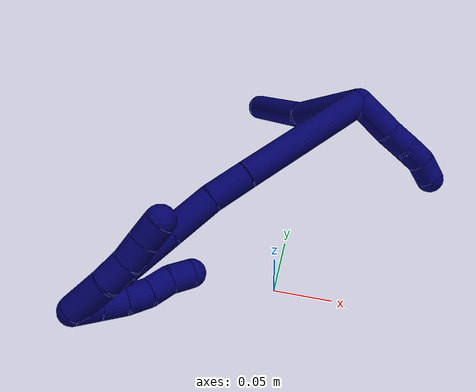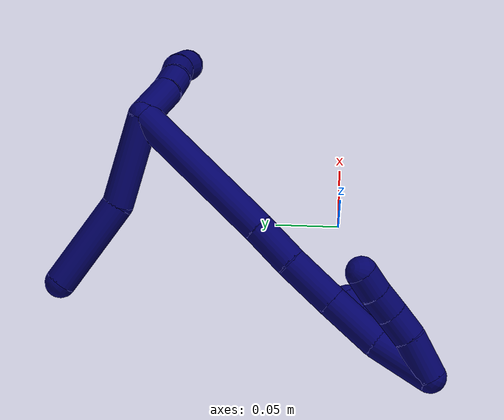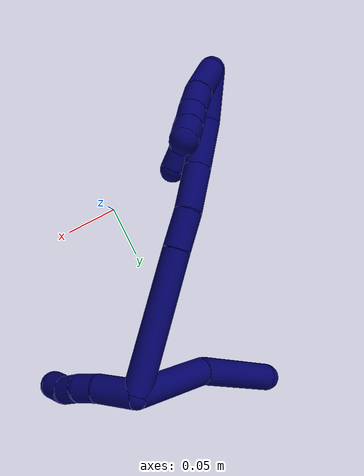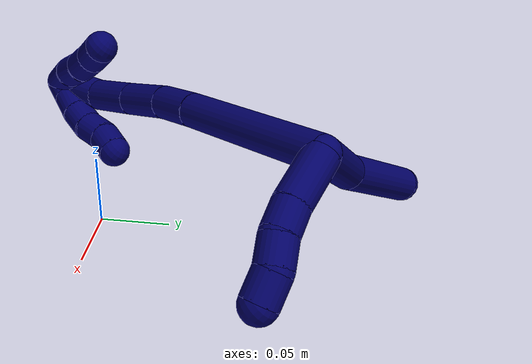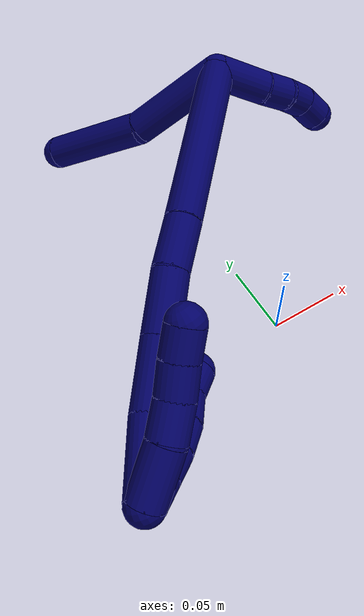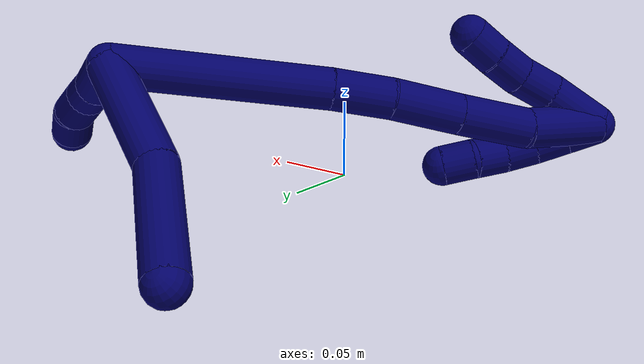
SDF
<sdf version="1.7">
 <world name="default">
  <model name="7">
   <static>0</static>
   <link name="7">
    <collision name="collision-cylinder-e_1_2_8">
     <pose>0.034683 -0.008422 0.007721 0.828784 1.25256 0.616158</pose>
     <geometry><cylinder><radius>0.0125</radius><length>0.073032</length></cylinder></geometry>
     <surface>
      <friction><ode><mu>1.16</mu><mu2>1.16</mu2><slip1>0</slip1><slip2>0</slip2></ode></friction>
      <contact><ode><kp>1e+06</kp><kd>1</kd><max_vel>0</max_vel><min_depth>0.001</min_depth></ode></contact>
     </surface>
    </collision>
    <visual name="visual-cylinder-e_1_2_8">
     <pose>0.034683 -0.008422 0.007721 0.828784 1.25256 0.616158</pose>
     <geometry><cylinder><radius>0.0125</radius><length>0.073032</length></cylinder></geometry>
     <material><ambient>0.003922 0 0.403922 1</ambient></material>
    </visual>
    <collision name="collision-cylinder-e_2_8_6">
     <pose>0.107714 -0.018496 0.012684 2.60204 1.48715 2.55744</pose>
     <geometry><cylinder><radius>0.0125</radius><length>0.076968</length></cylinder></geometry>
     <surface>
      <friction><ode><mu>1.16</mu><mu2>1.16</mu2><slip1>0</slip1><slip2>0</slip2></ode></friction>
      <contact><ode><kp>1e+06</kp><kd>1</kd><max_vel>0</max_vel><min_depth>0.001</min_depth></ode></contact>
     </surface>
    </collision>
    <visual name="visual-cylinder-e_2_8_6">
     <pose>0.107714 -0.018496 0.012684 2.60204 1.48715 2.55744</pose>
     <geometry><cylinder><radius>0.0125</radius><length>0.076968</length></cylinder></geometry>
     <material><ambient>0.003922 0 0.403922 1</ambient></material>
    </visual>
    <collision name="collision-cylinder-e_1_2_9">
     <pose>-0.009158 0.011608 0.012654 -0.742327 -0.489928 0.193979</pose>
     <geometry><cylinder><radius>0.0125</radius><length>0.038922</length></cylinder></geometry>
     <surface>
      <friction><ode><mu>1.16</mu><mu2>1.16</mu2><slip1>0</slip1><slip2>0</slip2></ode></friction>
      <contact><ode><kp>1e+06</kp><kd>1</kd><max_vel>0</max_vel><min_depth>0.001</min_depth></ode></contact>
     </surface>
    </collision>
    <visual name="visual-cylinder-e_1_2_9">
     <pose>-0.009158 0.011608 0.012654 -0.742327 -0.489928 0.193979</pose>
     <geometry><cylinder><radius>0.0125</radius><length>0.038922</length></cylinder></geometry>
     <material><ambient>0.003922 0 0.403922 1</ambient></material>
    </visual>
    <collision name="collision-cylinder-e_2_9_10">
     <pose>-0.022471 0.030455 0.031392 -0.871775 -0.414035 0.195026</pose>
     <geometry><cylinder><radius>0.0125</radius><length>0.020657</length></cylinder></geometry>
     <surface>
      <friction><ode><mu>1.16</mu><mu2>1.16</mu2><slip1>0</slip1><slip2>0</slip2></ode></friction>
      <contact><ode><kp>1e+06</kp><kd>1</kd><max_vel>0</max_vel><min_depth>0.001</min_depth></ode></contact>
     </surface>
    </collision>
    <visual name="visual-cylinder-e_2_9_10">
     <pose>-0.022471 0.030455 0.031392 -0.871775 -0.414035 0.195026</pose>
     <geometry><cylinder><radius>0.0125</radius><length>0.020657</length></cylinder></geometry>
     <material><ambient>0.003922 0 0.403922 1</ambient></material>
    </visual>
    <collision name="collision-cylinder-e_3_10_11">
     <pose>-0.028354 0.04585 0.043152 -0.96298 -0.172187 0.09013</pose>
     <geometry><cylinder><radius>0.0125</radius><length>0.020173</length></cylinder></geometry>
     <surface>
      <friction><ode><mu>1.16</mu><mu2>1.16</mu2><slip1>0</slip1><slip2>0</slip2></ode></friction>
      <contact><ode><kp>1e+06</kp><kd>1</kd><max_vel>0</max_vel><min_depth>0.001</min_depth></ode></contact>
     </surface>
    </collision>
    <visual name="visual-cylinder-e_3_10_11">
     <pose>-0.028354 0.04585 0.043152 -0.96298 -0.172187 0.09013</pose>
     <geometry><cylinder><radius>0.0125</radius><length>0.020173</length></cylinder></geometry>
     <material><ambient>0.003922 0 0.403922 1</ambient></material>
    </visual>
    <collision name="collision-cylinder-e_4_11_5">
     <pose>-0.031464 0.059936 0.056916 -0.632416 -0.136889 0.044851</pose>
     <geometry><cylinder><radius>0.0125</radius><length>0.020248</length></cylinder></geometry>
     <surface>
      <friction><ode><mu>1.16</mu><mu2>1.16</mu2><slip1>0</slip1><slip2>0</slip2></ode></friction>
      <contact><ode><kp>1e+06</kp><kd>1</kd><max_vel>0</max_vel><min_depth>0.001</min_depth></ode></contact>
     </surface>
    </collision>
    <visual name="visual-cylinder-e_4_11_5">
     <pose>-0.031464 0.059936 0.056916 -0.632416 -0.136889 0.044851</pose>
     <geometry><cylinder><radius>0.0125</radius><length>0.020248</length></cylinder></geometry>
     <material><ambient>0.003922 0 0.403922 1</ambient></material>
    </visual>
    <collision name="collision-cylinder-e_1_2_12">
     <pose>0.006722 -0.051697 0.035196 0.973066 0.107073 0.056675</pose>
     <geometry><cylinder><radius>0.0125</radius><length>0.125801</length></cylinder></geometry>
     <surface>
      <friction><ode><mu>1.16</mu><mu2>1.16</mu2><slip1>0</slip1><slip2>0</slip2></ode></friction>
      <contact><ode><kp>1e+06</kp><kd>1</kd><max_vel>0</max_vel><min_depth>0.001</min_depth></ode></contact>
     </surface>
    </collision>
    <visual name="visual-cylinder-e_1_2_12">
     <pose>0.006722 -0.051697 0.035196 0.973066 0.107073 0.056675</pose>
     <geometry><cylinder><radius>0.0125</radius><length>0.125801</length></cylinder></geometry>
     <material><ambient>0.003922 0 0.403922 1</ambient></material>
    </visual>
    <collision name="collision-cylinder-e_2_12_13">
     <pose>0.016204 -0.117909 0.080892 0.944513 0.152819 0.078174</pose>
     <geometry><cylinder><radius>0.0125</radius><length>0.036254</length></cylinder></geometry>
     <surface>
      <friction><ode><mu>1.16</mu><mu2>1.16</mu2><slip1>0</slip1><slip2>0</slip2></ode></friction>
      <contact><ode><kp>1e+06</kp><kd>1</kd><max_vel>0</max_vel><min_depth>0.001</min_depth></ode></contact>
     </surface>
    </collision>
    <visual name="visual-cylinder-e_2_12_13">
     <pose>0.016204 -0.117909 0.080892 0.944513 0.152819 0.078174</pose>
     <geometry><cylinder><radius>0.0125</radius><length>0.036254</length></cylinder></geometry>
     <material><ambient>0.003922 0 0.403922 1</ambient></material>
    </visual>
    <collision name="collision-cylinder-e_3_13_14">
     <pose>0.021734 -0.148093 0.105573 0.835229 0.130366 0.057911</pose>
     <geometry><cylinder><radius>0.0125</radius><length>0.042626</length></cylinder></geometry>
     <surface>
      <friction><ode><mu>1.16</mu><mu2>1.16</mu2><slip1>0</slip1><slip2>0</slip2></ode></friction>
      <contact><ode><kp>1e+06</kp><kd>1</kd><max_vel>0</max_vel><min_depth>0.001</min_depth></ode></contact>
     </surface>
    </collision>
    <visual name="visual-cylinder-e_3_13_14">
     <pose>0.021734 -0.148093 0.105573 0.835229 0.130366 0.057911</pose>
     <geometry><cylinder><radius>0.0125</radius><length>0.042626</length></cylinder></geometry>
     <material><ambient>0.003922 0 0.403922 1</ambient></material>
    </visual>
    <collision name="collision-cylinder-e_4_14_15">
     <pose>0.027009 -0.180975 0.134991 0.846208 0.108536 0.048912</pose>
     <geometry><cylinder><radius>0.0125</radius><length>0.046251</length></cylinder></geometry>
     <surface>
      <friction><ode><mu>1.16</mu><mu2>1.16</mu2><slip1>0</slip1><slip2>0</slip2></ode></friction>
      <contact><ode><kp>1e+06</kp><kd>1</kd><max_vel>0</max_vel><min_depth>0.001</min_depth></ode></contact>
     </surface>
    </collision>
    <visual name="visual-cylinder-e_4_14_15">
     <pose>0.027009 -0.180975 0.134991 0.846208 0.108536 0.048912</pose>
     <geometry><cylinder><radius>0.0125</radius><length>0.046251</length></cylinder></geometry>
     <material><ambient>0.003922 0 0.403922 1</ambient></material>
    </visual>
    <collision name="collision-cylinder-e_5_15_1">
     <pose>0.027171 -0.218243 0.164167 0.963442 -0.095637 -0.050027</pose>
     <geometry><cylinder><radius>0.0125</radius><length>0.049068</length></cylinder></geometry>
     <surface>
      <friction><ode><mu>1.16</mu><mu2>1.16</mu2><slip1>0</slip1><slip2>0</slip2></ode></friction>
      <contact><ode><kp>1e+06</kp><kd>1</kd><max_vel>0</max_vel><min_depth>0.001</min_depth></ode></contact>
     </surface>
    </collision>
    <visual name="visual-cylinder-e_5_15_1">
     <pose>0.027171 -0.218243 0.164167 0.963442 -0.095637 -0.050027</pose>
     <geometry><cylinder><radius>0.0125</radius><length>0.049068</length></cylinder></geometry>
     <material><ambient>0.003922 0 0.403922 1</ambient></material>
    </visual>
    <collision name="collision-cylinder-e_1_1_16">
     <pose>0.024905 -0.228334 0.17726 -1.65533 0.007651 -0.008327</pose>
     <geometry><cylinder><radius>0.0125</radius><length>0.02</length></cylinder></geometry>
     <surface>
      <friction><ode><mu>1.16</mu><mu2>1.16</mu2><slip1>0</slip1><slip2>0</slip2></ode></friction>
      <contact><ode><kp>1e+06</kp><kd>1</kd><max_vel>0</max_vel><min_depth>0.001</min_depth></ode></contact>
     </surface>
    </collision>
    <visual name="visual-cylinder-e_1_1_16">
     <pose>0.024905 -0.228334 0.17726 -1.65533 0.007651 -0.008327</pose>
     <geometry><cylinder><radius>0.0125</radius><length>0.02</length></cylinder></geometry>
     <material><ambient>0.003922 0 0.403922 1</ambient></material>
    </visual>
    <collision name="collision-cylinder-e_2_16_17">
     <pose>0.025015 -0.208406 0.17557 -1.65545 0.003302 -0.003595</pose>
     <geometry><cylinder><radius>0.0125</radius><length>0.02</length></cylinder></geometry>
     <surface>
      <friction><ode><mu>1.16</mu><mu2>1.16</mu2><slip1>0</slip1><slip2>0</slip2></ode></friction>
      <contact><ode><kp>1e+06</kp><kd>1</kd><max_vel>0</max_vel><min_depth>0.001</min_depth></ode></contact>
     </surface>
    </collision>
    <visual name="visual-cylinder-e_2_16_17">
     <pose>0.025015 -0.208406 0.17557 -1.65545 0.003302 -0.003595</pose>
     <geometry><cylinder><radius>0.0125</radius><length>0.02</length></cylinder></geometry>
     <material><ambient>0.003922 0 0.403922 1</ambient></material>
    </visual>
    <collision name="collision-cylinder-e_3_17_18">
     <pose>0.025441 -0.188694 0.172527 -1.79252 0.039335 -0.049186</pose>
     <geometry><cylinder><radius>0.0125</radius><length>0.02</length></cylinder></geometry>
     <surface>
      <friction><ode><mu>1.16</mu><mu2>1.16</mu2><slip1>0</slip1><slip2>0</slip2></ode></friction>
      <contact><ode><kp>1e+06</kp><kd>1</kd><max_vel>0</max_vel><min_depth>0.001</min_depth></ode></contact>
     </surface>
    </collision>
    <visual name="visual-cylinder-e_3_17_18">
     <pose>0.025441 -0.188694 0.172527 -1.79252 0.039335 -0.049186</pose>
     <geometry><cylinder><radius>0.0125</radius><length>0.02</length></cylinder></geometry>
     <material><ambient>0.003922 0 0.403922 1</ambient></material>
    </visual>
    <collision name="collision-cylinder-e_4_18_19">
     <pose>0.027065 -0.17 0.166034 -2.01846 0.123382 -0.195737</pose>
     <geometry><cylinder><radius>0.0125</radius><length>0.02</length></cylinder></geometry>
     <surface>
      <friction><ode><mu>1.16</mu><mu2>1.16</mu2><slip1>0</slip1><slip2>0</slip2></ode></friction>
      <contact><ode><kp>1e+06</kp><kd>1</kd><max_vel>0</max_vel><min_depth>0.001</min_depth></ode></contact>
     </surface>
    </collision>
    <visual name="visual-cylinder-e_4_18_19">
     <pose>0.027065 -0.17 0.166034 -2.01846 0.123382 -0.195737</pose>
     <geometry><cylinder><radius>0.0125</radius><length>0.02</length></cylinder></geometry>
     <material><ambient>0.003922 0 0.403922 1</ambient></material>
    </visual>
    <collision name="collision-cylinder-e_5_19_4">
     <pose>0.028031 -0.151276 0.159659 -1.78027 -0.026443 0.032655</pose>
     <geometry><cylinder><radius>0.0125</radius><length>0.02</length></cylinder></geometry>
     <surface>
      <friction><ode><mu>1.16</mu><mu2>1.16</mu2><slip1>0</slip1><slip2>0</slip2></ode></friction>
      <contact><ode><kp>1e+06</kp><kd>1</kd><max_vel>0</max_vel><min_depth>0.001</min_depth></ode></contact>
     </surface>
    </collision>
    <visual name="visual-cylinder-e_5_19_4">
     <pose>0.028031 -0.151276 0.159659 -1.78027 -0.026443 0.032655</pose>
     <geometry><cylinder><radius>0.0125</radius><length>0.02</length></cylinder></geometry>
     <material><ambient>0.003922 0 0.403922 1</ambient></material>
    </visual>
    <collision name="collision-cylinder-e_1_1_20">
     <pose>0.016358 -0.228853 0.16566 -2.49235 -0.496851 1.29183</pose>
     <geometry><cylinder><radius>0.0125</radius><length>0.035542</length></cylinder></geometry>
     <surface>
      <friction><ode><mu>1.16</mu><mu2>1.16</mu2><slip1>0</slip1><slip2>0</slip2></ode></friction>
      <contact><ode><kp>1e+06</kp><kd>1</kd><max_vel>0</max_vel><min_depth>0.001</min_depth></ode></contact>
     </surface>
    </collision>
    <visual name="visual-cylinder-e_1_1_20">
     <pose>0.016358 -0.228853 0.16566 -2.49235 -0.496851 1.29183</pose>
     <geometry><cylinder><radius>0.0125</radius><length>0.035542</length></cylinder></geometry>
     <material><ambient>0.003922 0 0.403922 1</ambient></material>
    </visual>
    <collision name="collision-cylinder-e_2_20_21">
     <pose>0.004152 -0.212635 0.144532 -2.47926 -0.326966 0.89465</pose>
     <geometry><cylinder><radius>0.0125</radius><length>0.023258</length></cylinder></geometry>
     <surface>
      <friction><ode><mu>1.16</mu><mu2>1.16</mu2><slip1>0</slip1><slip2>0</slip2></ode></friction>
      <contact><ode><kp>1e+06</kp><kd>1</kd><max_vel>0</max_vel><min_depth>0.001</min_depth></ode></contact>
     </surface>
    </collision>
    <visual name="visual-cylinder-e_2_20_21">
     <pose>0.004152 -0.212635 0.144532 -2.47926 -0.326966 0.89465</pose>
     <geometry><cylinder><radius>0.0125</radius><length>0.023258</length></cylinder></geometry>
     <material><ambient>0.003922 0 0.403922 1</ambient></material>
    </visual>
    <collision name="collision-cylinder-e_3_21_22">
     <pose>-0.003007 -0.20109 0.127093 -2.64241 -0.330826 1.15963</pose>
     <geometry><cylinder><radius>0.0125</radius><length>0.021086</length></cylinder></geometry>
     <surface>
      <friction><ode><mu>1.16</mu><mu2>1.16</mu2><slip1>0</slip1><slip2>0</slip2></ode></friction>
      <contact><ode><kp>1e+06</kp><kd>1</kd><max_vel>0</max_vel><min_depth>0.001</min_depth></ode></contact>
     </surface>
    </collision>
    <visual name="visual-cylinder-e_3_21_22">
     <pose>-0.003007 -0.20109 0.127093 -2.64241 -0.330826 1.15963</pose>
     <geometry><cylinder><radius>0.0125</radius><length>0.021086</length></cylinder></geometry>
     <material><ambient>0.003922 0 0.403922 1</ambient></material>
    </visual>
    <collision name="collision-cylinder-e_4_22_3">
     <pose>-0.010438 -0.192039 0.110166 -2.65943 -0.409695 1.4032</pose>
     <geometry><cylinder><radius>0.0125</radius><length>0.020114</length></cylinder></geometry>
     <surface>
      <friction><ode><mu>1.16</mu><mu2>1.16</mu2><slip1>0</slip1><slip2>0</slip2></ode></friction>
      <contact><ode><kp>1e+06</kp><kd>1</kd><max_vel>0</max_vel><min_depth>0.001</min_depth></ode></contact>
     </surface>
    </collision>
    <visual name="visual-cylinder-e_4_22_3">
     <pose>-0.010438 -0.192039 0.110166 -2.65943 -0.409695 1.4032</pose>
     <geometry><cylinder><radius>0.0125</radius><length>0.020114</length></cylinder></geometry>
     <material><ambient>0.003922 0 0.403922 1</ambient></material>
    </visual>
    <collision name="collision-sphere-3">
     <pose>-0.014444 -0.187761 0.101993 0 -0 0</pose>
     <geometry><sphere><radius>0.0125</radius></sphere></geometry>
     <surface>
      <friction><ode><mu>1.16</mu><mu2>1.16</mu2><slip1>0</slip1><slip2>0</slip2></ode></friction>
      <contact><ode><kp>1e+06</kp><kd>1</kd><max_vel>0</max_vel><min_depth>0.001</min_depth></ode></contact>
     </surface>
    </collision>
    <visual name="visual-sphere-3">
     <pose>-0.014444 -0.187761 0.101993 0 -0 0</pose>
     <geometry><sphere><radius>0.0125</radius></sphere></geometry>
     <material><ambient>0.003922 0 0.403922 1</ambient></material>
    </visual>
    <collision name="collision-sphere-22">
     <pose>-0.006432 -0.196316 0.118339 0 -0 0</pose>
     <geometry><sphere><radius>0.0125</radius></sphere></geometry>
     <surface>
      <friction><ode><mu>1.16</mu><mu2>1.16</mu2><slip1>0</slip1><slip2>0</slip2></ode></friction>
      <contact><ode><kp>1e+06</kp><kd>1</kd><max_vel>0</max_vel><min_depth>0.001</min_depth></ode></contact>
     </surface>
    </collision>
    <visual name="visual-sphere-22">
     <pose>-0.006432 -0.196316 0.118339 0 -0 0</pose>
     <geometry><sphere><radius>0.0125</radius></sphere></geometry>
     <material><ambient>0.003922 0 0.403922 1</ambient></material>
    </visual>
    <collision name="collision-sphere-21">
     <pose>0.000417 -0.205863 0.135848 0 -0 0</pose>
     <geometry><sphere><radius>0.0125</radius></sphere></geometry>
     <surface>
      <friction><ode><mu>1.16</mu><mu2>1.16</mu2><slip1>0</slip1><slip2>0</slip2></ode></friction>
      <contact><ode><kp>1e+06</kp><kd>1</kd><max_vel>0</max_vel><min_depth>0.001</min_depth></ode></contact>
     </surface>
    </collision>
    <visual name="visual-sphere-21">
     <pose>0.000417 -0.205863 0.135848 0 -0 0</pose>
     <geometry><sphere><radius>0.0125</radius></sphere></geometry>
     <material><ambient>0.003922 0 0.403922 1</ambient></material>
    </visual>
    <collision name="collision-sphere-20">
     <pose>0.007887 -0.219408 0.153216 0 -0 0</pose>
     <geometry><sphere><radius>0.0125</radius></sphere></geometry>
     <surface>
      <friction><ode><mu>1.16</mu><mu2>1.16</mu2><slip1>0</slip1><slip2>0</slip2></ode></friction>
      <contact><ode><kp>1e+06</kp><kd>1</kd><max_vel>0</max_vel><min_depth>0.001</min_depth></ode></contact>
     </surface>
    </collision>
    <visual name="visual-sphere-20">
     <pose>0.007887 -0.219408 0.153216 0 -0 0</pose>
     <geometry><sphere><radius>0.0125</radius></sphere></geometry>
     <material><ambient>0.003922 0 0.403922 1</ambient></material>
    </visual>
    <collision name="collision-sphere-4">
     <pose>0.027767 -0.141498 0.157581 0 -0 0</pose>
     <geometry><sphere><radius>0.0125</radius></sphere></geometry>
     <surface>
      <friction><ode><mu>1.16</mu><mu2>1.16</mu2><slip1>0</slip1><slip2>0</slip2></ode></friction>
      <contact><ode><kp>1e+06</kp><kd>1</kd><max_vel>0</max_vel><min_depth>0.001</min_depth></ode></contact>
     </surface>
    </collision>
    <visual name="visual-sphere-4">
     <pose>0.027767 -0.141498 0.157581 0 -0 0</pose>
     <geometry><sphere><radius>0.0125</radius></sphere></geometry>
     <material><ambient>0.003922 0 0.403922 1</ambient></material>
    </visual>
    <collision name="collision-sphere-11">
     <pose>-0.030082 0.054008 0.048827 0 -0 0</pose>
     <geometry><sphere><radius>0.0125</radius></sphere></geometry>
     <surface>
      <friction><ode><mu>1.16</mu><mu2>1.16</mu2><slip1>0</slip1><slip2>0</slip2></ode></friction>
      <contact><ode><kp>1e+06</kp><kd>1</kd><max_vel>0</max_vel><min_depth>0.001</min_depth></ode></contact>
     </surface>
    </collision>
    <visual name="visual-sphere-11">
     <pose>-0.030082 0.054008 0.048827 0 -0 0</pose>
     <geometry><sphere><radius>0.0125</radius></sphere></geometry>
     <material><ambient>0.003922 0 0.403922 1</ambient></material>
    </visual>
    <collision name="collision-sphere-10">
     <pose>-0.026626 0.037693 0.037477 0 -0 0</pose>
     <geometry><sphere><radius>0.0125</radius></sphere></geometry>
     <surface>
      <friction><ode><mu>1.16</mu><mu2>1.16</mu2><slip1>0</slip1><slip2>0</slip2></ode></friction>
      <contact><ode><kp>1e+06</kp><kd>1</kd><max_vel>0</max_vel><min_depth>0.001</min_depth></ode></contact>
     </surface>
    </collision>
    <visual name="visual-sphere-10">
     <pose>-0.026626 0.037693 0.037477 0 -0 0</pose>
     <geometry><sphere><radius>0.0125</radius></sphere></geometry>
     <material><ambient>0.003922 0 0.403922 1</ambient></material>
    </visual>
    <collision name="collision-sphere-6">
     <pose>0.146064 -0.020148 0.009925 0 -0 0</pose>
     <geometry><sphere><radius>0.0125</radius></sphere></geometry>
     <surface>
      <friction><ode><mu>1.16</mu><mu2>1.16</mu2><slip1>0</slip1><slip2>0</slip2></ode></friction>
      <contact><ode><kp>1e+06</kp><kd>1</kd><max_vel>0</max_vel><min_depth>0.001</min_depth></ode></contact>
     </surface>
    </collision>
    <visual name="visual-sphere-6">
     <pose>0.146064 -0.020148 0.009925 0 -0 0</pose>
     <geometry><sphere><radius>0.0125</radius></sphere></geometry>
     <material><ambient>0.003922 0 0.403922 1</ambient></material>
    </visual>
    <collision name="collision-sphere-9">
     <pose>-0.018315 0.023216 0.025308 0 -0 0</pose>
     <geometry><sphere><radius>0.0125</radius></sphere></geometry>
     <surface>
      <friction><ode><mu>1.16</mu><mu2>1.16</mu2><slip1>0</slip1><slip2>0</slip2></ode></friction>
      <contact><ode><kp>1e+06</kp><kd>1</kd><max_vel>0</max_vel><min_depth>0.001</min_depth></ode></contact>
     </surface>
    </collision>
    <visual name="visual-sphere-9">
     <pose>-0.018315 0.023216 0.025308 0 -0 0</pose>
     <geometry><sphere><radius>0.0125</radius></sphere></geometry>
     <material><ambient>0.003922 0 0.403922 1</ambient></material>
    </visual>
    <collision name="collision-sphere-2">
     <geometry><sphere><radius>0.0125</radius></sphere></geometry>
     <surface>
      <friction><ode><mu>1.16</mu><mu2>1.16</mu2><slip1>0</slip1><slip2>0</slip2></ode></friction>
      <contact><ode><kp>1e+06</kp><kd>1</kd><max_vel>0</max_vel><min_depth>0.001</min_depth></ode></contact>
     </surface>
    </collision>
    <visual name="visual-sphere-2">
     <geometry><sphere><radius>0.0125</radius></sphere></geometry>
     <material><ambient>0.003922 0 0.403922 1</ambient></material>
    </visual>
    <collision name="collision-sphere-19">
     <pose>0.028296 -0.161054 0.161738 0 -0 0</pose>
     <geometry><sphere><radius>0.0125</radius></sphere></geometry>
     <surface>
      <friction><ode><mu>1.16</mu><mu2>1.16</mu2><slip1>0</slip1><slip2>0</slip2></ode></friction>
      <contact><ode><kp>1e+06</kp><kd>1</kd><max_vel>0</max_vel><min_depth>0.001</min_depth></ode></contact>
     </surface>
    </collision>
    <visual name="visual-sphere-19">
     <pose>0.028296 -0.161054 0.161738 0 -0 0</pose>
     <geometry><sphere><radius>0.0125</radius></sphere></geometry>
     <material><ambient>0.003922 0 0.403922 1</ambient></material>
    </visual>
    <collision name="collision-sphere-8">
     <pose>0.069365 -0.016844 0.015442 0 -0 0</pose>
     <geometry><sphere><radius>0.0125</radius></sphere></geometry>
     <surface>
      <friction><ode><mu>1.16</mu><mu2>1.16</mu2><slip1>0</slip1><slip2>0</slip2></ode></friction>
      <contact><ode><kp>1e+06</kp><kd>1</kd><max_vel>0</max_vel><min_depth>0.001</min_depth></ode></contact>
     </surface>
    </collision>
    <visual name="visual-sphere-8">
     <pose>0.069365 -0.016844 0.015442 0 -0 0</pose>
     <geometry><sphere><radius>0.0125</radius></sphere></geometry>
     <material><ambient>0.003922 0 0.403922 1</ambient></material>
    </visual>
    <collision name="collision-sphere-5">
     <pose>-0.032845 0.065864 0.065006 0 -0 0</pose>
     <geometry><sphere><radius>0.0125</radius></sphere></geometry>
     <surface>
      <friction><ode><mu>1.16</mu><mu2>1.16</mu2><slip1>0</slip1><slip2>0</slip2></ode></friction>
      <contact><ode><kp>1e+06</kp><kd>1</kd><max_vel>0</max_vel><min_depth>0.001</min_depth></ode></contact>
     </surface>
    </collision>
    <visual name="visual-sphere-5">
     <pose>-0.032845 0.065864 0.065006 0 -0 0</pose>
     <geometry><sphere><radius>0.0125</radius></sphere></geometry>
     <material><ambient>0.003922 0 0.403922 1</ambient></material>
    </visual>
    <collision name="collision-sphere-12">
     <pose>0.013444 -0.103393 0.070391 0 -0 0</pose>
     <geometry><sphere><radius>0.0125</radius></sphere></geometry>
     <surface>
      <friction><ode><mu>1.16</mu><mu2>1.16</mu2><slip1>0</slip1><slip2>0</slip2></ode></friction>
      <contact><ode><kp>1e+06</kp><kd>1</kd><max_vel>0</max_vel><min_depth>0.001</min_depth></ode></contact>
     </surface>
    </collision>
    <visual name="visual-sphere-12">
     <pose>0.013444 -0.103393 0.070391 0 -0 0</pose>
     <geometry><sphere><radius>0.0125</radius></sphere></geometry>
     <material><ambient>0.003922 0 0.403922 1</ambient></material>
    </visual>
    <collision name="collision-sphere-13">
     <pose>0.018963 -0.132424 0.091393 0 -0 0</pose>
     <geometry><sphere><radius>0.0125</radius></sphere></geometry>
     <surface>
      <friction><ode><mu>1.16</mu><mu2>1.16</mu2><slip1>0</slip1><slip2>0</slip2></ode></friction>
      <contact><ode><kp>1e+06</kp><kd>1</kd><max_vel>0</max_vel><min_depth>0.001</min_depth></ode></contact>
     </surface>
    </collision>
    <visual name="visual-sphere-13">
     <pose>0.018963 -0.132424 0.091393 0 -0 0</pose>
     <geometry><sphere><radius>0.0125</radius></sphere></geometry>
     <material><ambient>0.003922 0 0.403922 1</ambient></material>
    </visual>
    <collision name="collision-sphere-14">
     <pose>0.024504 -0.163761 0.119753 0 -0 0</pose>
     <geometry><sphere><radius>0.0125</radius></sphere></geometry>
     <surface>
      <friction><ode><mu>1.16</mu><mu2>1.16</mu2><slip1>0</slip1><slip2>0</slip2></ode></friction>
      <contact><ode><kp>1e+06</kp><kd>1</kd><max_vel>0</max_vel><min_depth>0.001</min_depth></ode></contact>
     </surface>
    </collision>
    <visual name="visual-sphere-14">
     <pose>0.024504 -0.163761 0.119753 0 -0 0</pose>
     <geometry><sphere><radius>0.0125</radius></sphere></geometry>
     <material><ambient>0.003922 0 0.403922 1</ambient></material>
    </visual>
    <collision name="collision-sphere-15">
     <pose>0.029514 -0.198189 0.150229 0 -0 0</pose>
     <geometry><sphere><radius>0.0125</radius></sphere></geometry>
     <surface>
      <friction><ode><mu>1.16</mu><mu2>1.16</mu2><slip1>0</slip1><slip2>0</slip2></ode></friction>
      <contact><ode><kp>1e+06</kp><kd>1</kd><max_vel>0</max_vel><min_depth>0.001</min_depth></ode></contact>
     </surface>
    </collision>
    <visual name="visual-sphere-15">
     <pose>0.029514 -0.198189 0.150229 0 -0 0</pose>
     <geometry><sphere><radius>0.0125</radius></sphere></geometry>
     <material><ambient>0.003922 0 0.403922 1</ambient></material>
    </visual>
    <collision name="collision-sphere-1">
     <pose>0.024829 -0.238298 0.178104 0 -0 0</pose>
     <geometry><sphere><radius>0.0125</radius></sphere></geometry>
     <surface>
      <friction><ode><mu>1.16</mu><mu2>1.16</mu2><slip1>0</slip1><slip2>0</slip2></ode></friction>
      <contact><ode><kp>1e+06</kp><kd>1</kd><max_vel>0</max_vel><min_depth>0.001</min_depth></ode></contact>
     </surface>
    </collision>
    <visual name="visual-sphere-1">
     <pose>0.024829 -0.238298 0.178104 0 -0 0</pose>
     <geometry><sphere><radius>0.0125</radius></sphere></geometry>
     <material><ambient>0.003922 0 0.403922 1</ambient></material>
    </visual>
    <collision name="collision-sphere-18">
     <pose>0.025834 -0.178946 0.17033 0 -0 0</pose>
     <geometry><sphere><radius>0.0125</radius></sphere></geometry>
     <surface>
      <friction><ode><mu>1.16</mu><mu2>1.16</mu2><slip1>0</slip1><slip2>0</slip2></ode></friction>
      <contact><ode><kp>1e+06</kp><kd>1</kd><max_vel>0</max_vel><min_depth>0.001</min_depth></ode></contact>
     </surface>
    </collision>
    <visual name="visual-sphere-18">
     <pose>0.025834 -0.178946 0.17033 0 -0 0</pose>
     <geometry><sphere><radius>0.0125</radius></sphere></geometry>
     <material><ambient>0.003922 0 0.403922 1</ambient></material>
    </visual>
    <collision name="collision-sphere-16">
     <pose>0.024982 -0.21837 0.176416 0 -0 0</pose>
     <geometry><sphere><radius>0.0125</radius></sphere></geometry>
     <surface>
      <friction><ode><mu>1.16</mu><mu2>1.16</mu2><slip1>0</slip1><slip2>0</slip2></ode></friction>
      <contact><ode><kp>1e+06</kp><kd>1</kd><max_vel>0</max_vel><min_depth>0.001</min_depth></ode></contact>
     </surface>
    </collision>
    <visual name="visual-sphere-16">
     <pose>0.024982 -0.21837 0.176416 0 -0 0</pose>
     <geometry><sphere><radius>0.0125</radius></sphere></geometry>
     <material><ambient>0.003922 0 0.403922 1</ambient></material>
    </visual>
    <collision name="collision-sphere-17">
     <pose>0.025048 -0.198441 0.174725 0 -0 0</pose>
     <geometry><sphere><radius>0.0125</radius></sphere></geometry>
     <surface>
      <friction><ode><mu>1.16</mu><mu2>1.16</mu2><slip1>0</slip1><slip2>0</slip2></ode></friction>
      <contact><ode><kp>1e+06</kp><kd>1</kd><max_vel>0</max_vel><min_depth>0.001</min_depth></ode></contact>
     </surface>
    </collision>
    <visual name="visual-sphere-17">
     <pose>0.025048 -0.198441 0.174725 0 -0 0</pose>
     <geometry><sphere><radius>0.0125</radius></sphere></geometry>
     <material><ambient>0.003922 0 0.403922 1</ambient></material>
    </visual>
    <inertial>
     <pose>0.022333 -0.100141 0.082706 0 -0 0</pose>
     <mass>0.75</mass>
     <inertia>
      <ixx>0.000267</ixx>
      <ixy>0</ixy>
      <ixz>0</ixz>
      <iyy>0.000225</iyy>
      <iyz>0</iyz>
      <izz>8.4e-05</izz>
     </inertia>
    </inertial>
   </link>
   <pose>0.046548 0.154616 0.091876 -2.64341 0.588896 2.43621</pose>
  </model>
 </world>
</sdf>
